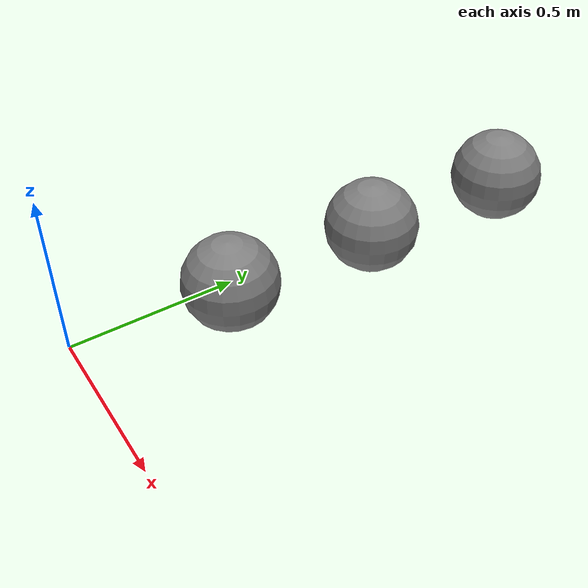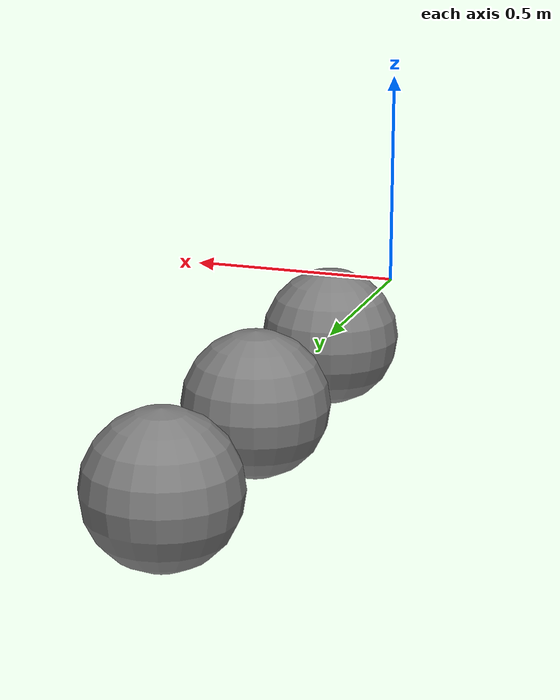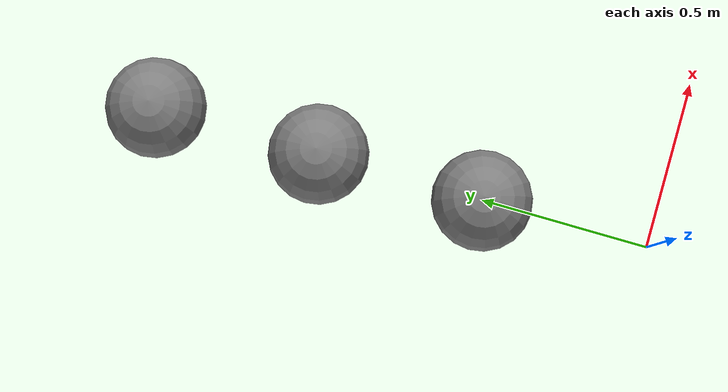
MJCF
<mujoco model="triple_pendulum_free">
  <option timestep="0.02" solver="CG" iterations="6" ls_iterations="6"/>
  <default>
    <geom contype="0" conaffinity="0"/>
  </default>
  <worldbody>
    <body>
      <joint type="free"/>
      <geom pos="0 0.5 0" size=".15" mass="1" type="sphere"/>
    </body>
    <body>
      <joint axis="1 0 0" type="hinge"/>
      <geom pos="0 0.5 0" size=".15" mass="1" type="sphere"/>
      <body pos="0 0.5 0">
        <joint axis="1 0 0" type="hinge"/>
        <geom pos="0 0.5 0" size=".15" mass="2" type="sphere"/>
        <body pos="0 0.5 0">
          <joint axis="1 0 0" type="hinge"/>
          <geom pos="0 0.5 0" size=".15" mass="3" type="sphere"/>
        </body>
      </body>
    </body>
  </worldbody>
</mujoco>
